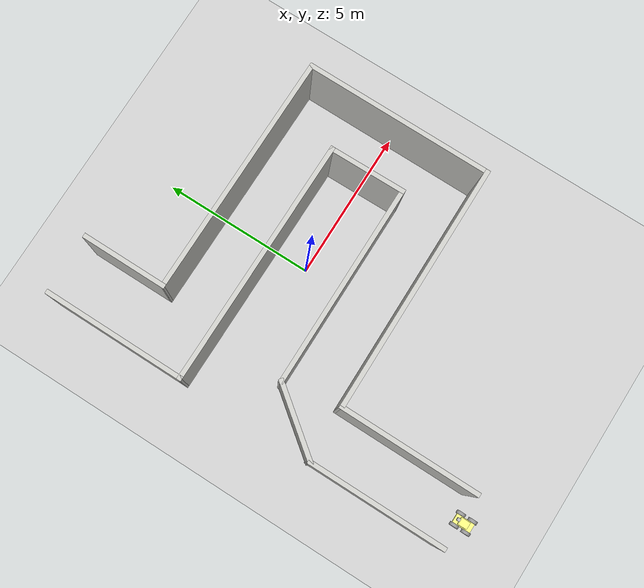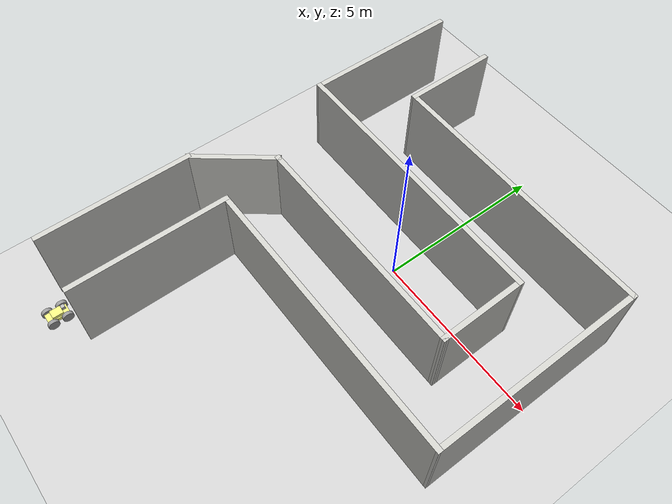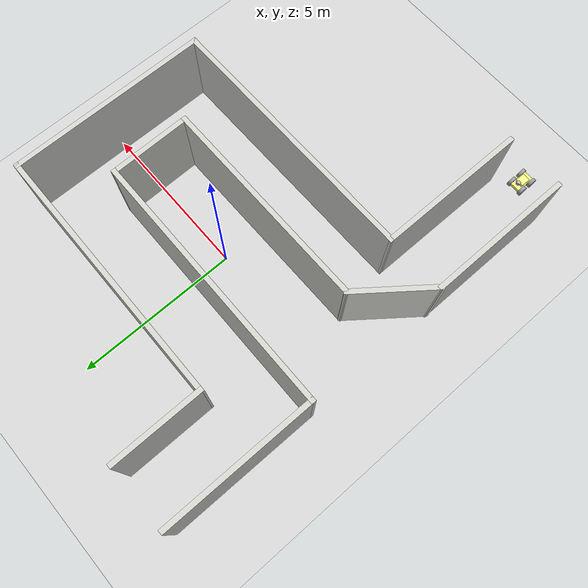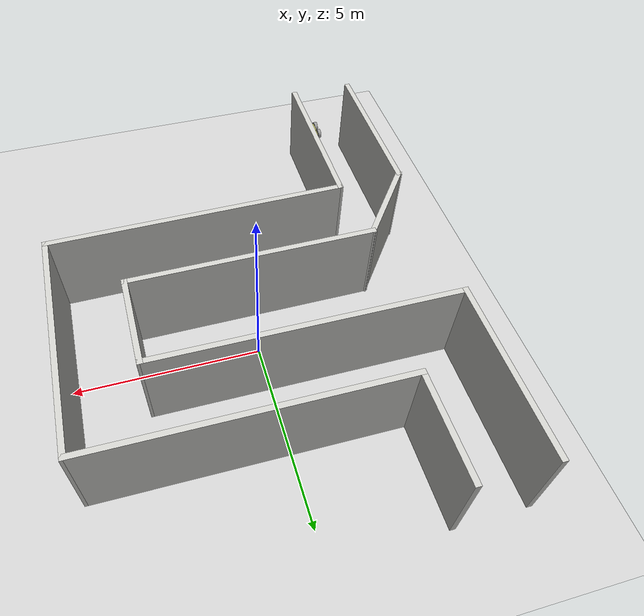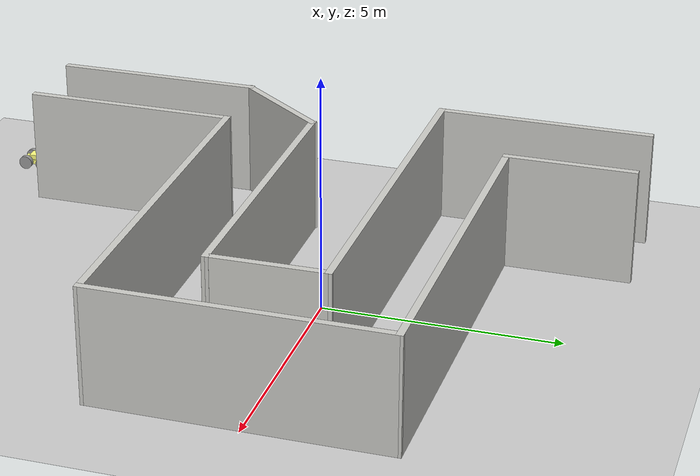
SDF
<sdf version="1.7">
 <world name="default">
  <light name="sun" type="directional">
   <pose>0 0 10 0 -0 0</pose>
   <diffuse>0.8 0.8 0.8 1</diffuse>
   <specular>0.2 0.2 0.2 1</specular>
   <attenuation>
    <range>1000</range>
    <constant>0.9</constant>
    <linear>0.01</linear>
    <quadratic>0.001</quadratic>
   </attenuation>
   <direction>-0.5 0.1 -0.9</direction>
   <spot><inner_angle>0</inner_angle><outer_angle>0</outer_angle><falloff>0</falloff></spot>
  </light>
  <model name="ground_plane">
   <static>1</static>
   <link name="link">
    <collision name="collision">
     <geometry><plane><normal>0 0 1</normal><size>100 100</size></plane></geometry>
     <surface>
      <contact><collide_bitmask>65535</collide_bitmask></contact>
      <friction><ode><mu>100</mu><mu2>50</mu2></ode></friction>
     </surface>
    </collision>
    <visual name="visual">
     <cast_shadows>0</cast_shadows>
     <geometry><plane><normal>0 0 1</normal><size>100 100</size></plane></geometry>
     <material>
      <script><uri>file://media/materials/scripts/gazebo.material</uri><name>Gazebo/Grey</name></script>
     </material>
    </visual>
   </link>
  </model>
  <gravity>0 0 -9.8</gravity>
  <magnetic_field>6e-06 2.3e-05 -4.2e-05</magnetic_field>
  <atmosphere type="adiabatic"/>
  <physics type="ode">
   <max_step_size>0.001</max_step_size>
   <real_time_factor>1</real_time_factor>
   <real_time_update_rate>1000</real_time_update_rate>
  </physics>
  <scene><ambient>0.4 0.4 0.4 1</ambient><background>0.7 0.7 0.7 1</background><shadows>1</shadows></scene>
  <spherical_coordinates>
   <surface_model>EARTH_WGS84</surface_model>
   <latitude_deg>0</latitude_deg>
   <longitude_deg>0</longitude_deg>
   <elevation>0</elevation>
   <heading_deg>0</heading_deg>
  </spherical_coordinates>
  <model name="race3">
   <pose>-0.04989 -0.93009 0 0 -0 0</pose>
   <link name="Wall_0">
    <collision name="Wall_0_Collision">
     <geometry><box><size>4.5 0.15 2.5</size></box></geometry>
     <pose>0 0 1.25 0 -0 0</pose>
    </collision>
    <visual name="Wall_0_Visual">
     <pose>0 0 1.25 0 -0 0</pose>
     <geometry><box><size>4.5 0.15 2.5</size></box></geometry>
     <material>
      <script><uri>file://media/materials/scripts/gazebo.material</uri><name>Gazebo/CeilingTiled</name></script>
      <ambient>1 1 1 1</ambient>
     </material>
     <meta><layer>0</layer></meta>
    </visual>
    <pose>-4.92011 -4.44491 0 0 -0 1.5708</pose>
   </link>
   <link name="Wall_1">
    <collision name="Wall_1_Collision">
     <geometry><box><size>2.5584 0.15 2.5</size></box></geometry>
     <pose>0 0 1.25 0 -0 0</pose>
    </collision>
    <visual name="Wall_1_Visual">
     <pose>0 0 1.25 0 -0 0</pose>
     <geometry><box><size>2.5584 0.15 2.5</size></box></geometry>
     <material>
      <script><uri>file://media/materials/scripts/gazebo.material</uri><name>Gazebo/CeilingTiled</name></script>
      <ambient>1 1 1 1</ambient>
     </material>
     <meta><layer>0</layer></meta>
    </visual>
    <pose>-4.18011 -1.31991 0 0 -0 0.909025</pose>
   </link>
   <link name="Wall_10">
    <collision name="Wall_10_Collision">
     <geometry><box><size>8.07002 0.15 2.5</size></box></geometry>
     <pose>0 0 1.25 0 -0 0</pose>
    </collision>
    <visual name="Wall_10_Visual">
     <pose>0 0 1.25 0 -0 0</pose>
     <geometry><box><size>8.07002 0.15 2.5</size></box></geometry>
     <material>
      <script><uri>file://media/materials/scripts/gazebo.material</uri><name>Gazebo/CeilingTiled</name></script>
      <ambient>1 1 1 1</ambient>
     </material>
     <meta><layer>0</layer></meta>
    </visual>
    <pose>0.989895 3.95009 0 0 -0 3.13402</pose>
   </link>
   <link name="Wall_11">
    <collision name="Wall_11_Collision">
     <geometry><box><size>2.82 0.15 2.5</size></box></geometry>
     <pose>0 0 1.25 0 -0 0</pose>
    </collision>
    <visual name="Wall_11_Visual">
     <pose>0 0 1.25 0 -0 0</pose>
     <geometry><box><size>2.82 0.15 2.5</size></box></geometry>
     <material>
      <script><uri>file://media/materials/scripts/gazebo.material</uri><name>Gazebo/CeilingTiled</name></script>
      <ambient>1 1 1 1</ambient>
     </material>
     <meta><layer>0</layer></meta>
    </visual>
    <pose>-2.97011 5.31509 0 0 -0 1.5708</pose>
   </link>
   <link name="Wall_2">
    <collision name="Wall_2_Collision">
     <geometry><box><size>6.72001 0.15 2.5</size></box></geometry>
     <pose>0 0 1.25 0 -0 0</pose>
    </collision>
    <visual name="Wall_2_Visual">
     <pose>0 0 1.25 0 -0 0</pose>
     <geometry><box><size>6.72001 0.15 2.5</size></box></geometry>
     <material>
      <script><uri>file://media/materials/scripts/gazebo.material</uri><name>Gazebo/CeilingTiled</name></script>
      <ambient>1 1 1 1</ambient>
     </material>
     <meta><layer>0</layer></meta>
    </visual>
    <pose>-0.155105 -0.364907 0 0 -0 0.001522</pose>
   </link>
   <link name="Wall_3">
    <collision name="Wall_3_Collision">
     <geometry><box><size>2.56019 0.15 2.5</size></box></geometry>
     <pose>0 0 1.25 0 -0 0</pose>
    </collision>
    <visual name="Wall_3_Visual">
     <pose>0 0 1.25 0 -0 0</pose>
     <geometry><box><size>2.56019 0.15 2.5</size></box></geometry>
     <material>
      <script><uri>file://media/materials/scripts/gazebo.material</uri><name>Gazebo/CeilingTiled</name></script>
      <ambient>1 1 1 1</ambient>
     </material>
     <meta><layer>0</layer></meta>
    </visual>
    <pose>3.1149 0.845093 0 0 -0 1.58324</pose>
   </link>
   <link name="Wall_4">
    <collision name="Wall_4_Collision">
     <geometry><box><size>8.1704 0.15 2.5</size></box></geometry>
     <pose>0 0 1.25 0 -0 0</pose>
    </collision>
    <visual name="Wall_4_Visual">
     <pose>0 0 1.25 0 -0 0</pose>
     <geometry><box><size>8.1704 0.15 2.5</size></box></geometry>
     <material>
      <script><uri>file://media/materials/scripts/gazebo.material</uri><name>Gazebo/CeilingTiled</name></script>
      <ambient>1 1 1 1</ambient>
     </material>
     <meta><layer>0</layer></meta>
    </visual>
    <pose>-0.910105 2.07509 0 0 -0 3.13536</pose>
   </link>
   <link name="Wall_5">
    <collision name="Wall_5_Collision">
     <geometry><box><size>4.68001 0.15 2.5</size></box></geometry>
     <pose>0 0 1.25 0 -0 0</pose>
    </collision>
    <visual name="Wall_5_Visual">
     <pose>0 0 1.25 0 -0 0</pose>
     <geometry><box><size>4.68001 0.15 2.5</size></box></geometry>
     <material>
      <script><uri>file://media/materials/scripts/gazebo.material</uri><name>Gazebo/CeilingTiled</name></script>
      <ambient>1 1 1 1</ambient>
     </material>
     <meta><layer>0</layer></meta>
    </visual>
    <pose>-4.9151 4.36509 0 0 -0 1.56859</pose>
   </link>
   <link name="Wall_7">
    <collision name="Wall_7_Collision">
     <geometry><box><size>4.60004 0.15 2.5</size></box></geometry>
     <pose>0 0 1.25 0 -0 0</pose>
    </collision>
    <visual name="Wall_7_Visual">
     <pose>0 0 1.25 0 -0 0</pose>
     <geometry><box><size>4.60004 0.15 2.5</size></box></geometry>
     <material>
      <script><uri>file://media/materials/scripts/gazebo.material</uri><name>Gazebo/CeilingTiled</name></script>
      <ambient>1 1 1 1</ambient>
     </material>
     <meta><layer>0</layer></meta>
    </visual>
    <pose>-3.14511 -4.42491 0 0 -0 1.56855</pose>
   </link>
   <link name="Wall_8">
    <collision name="Wall_8_Collision">
     <geometry><box><size>8.24015 0.15 2.5</size></box></geometry>
     <pose>0 0 1.25 0 -0 0</pose>
    </collision>
    <visual name="Wall_8_Visual">
     <pose>0 0 1.25 0 -0 0</pose>
     <geometry><box><size>8.24015 0.15 2.5</size></box></geometry>
     <material>
      <script><uri>file://media/materials/scripts/gazebo.material</uri><name>Gazebo/CeilingTiled</name></script>
      <ambient>1 1 1 1</ambient>
     </material>
     <meta><layer>0</layer></meta>
    </visual>
    <pose>0.904895 -2.17491 0 0 -0 0.00618</pose>
   </link>
   <link name="Wall_9">
    <collision name="Wall_9_Collision">
     <geometry><box><size>6.22013 0.15 2.5</size></box></geometry>
     <pose>0 0 1.25 0 -0 0</pose>
    </collision>
    <visual name="Wall_9_Visual">
     <pose>0 0 1.25 0 -0 0</pose>
     <geometry><box><size>6.22013 0.15 2.5</size></box></geometry>
     <material>
      <script><uri>file://media/materials/scripts/gazebo.material</uri><name>Gazebo/CeilingTiled</name></script>
      <ambient>1 1 1 1</ambient>
     </material>
     <meta><layer>0</layer></meta>
    </visual>
    <pose>4.94989 0.885093 0 0 -0 1.5708</pose>
   </link>
   <static>1</static>
  </model>
  <model name="project_model_v1">
   <link name="chassis">
    <inertial>
     <mass>7</mass>
     <inertia>
      <ixx>0.0394333</ixx>
      <ixy>0</ixy>
      <ixz>0</ixz>
      <iyy>0.21491</iyy>
      <iyz>0</iyz>
      <izz>0.242677</izz>
     </inertia>
    </inertial>
    <pose>0 0 0.5 0 -0 0</pose>
    <visual name="visual">
     <geometry><box><size>0.59868 0.3 0.1</size></box></geometry>
     <material>
      <lighting>1</lighting>
      <script><uri>file://media/materials/scripts/gazebo.material</uri><name>Gazebo/Grey</name></script>
      <shader type="pixel"><normal_map>__default__</normal_map></shader>
      <emissive>0 0 0 1</emissive>
      <ambient>1 1 0.5 1</ambient>
      <diffuse>1 1 0.5 1</diffuse>
      <specular>0.01 0.01 0.01 1</specular>
     </material>
    </visual>
    <visual name="ModelPreview_1::chassis::visual_1">
     <geometry><box><size>0.59868 0.3 0.1</size></box></geometry>
     <material>
      <lighting>1</lighting>
      <script><uri>file://media/materials/scripts/gazebo.material</uri><name>Gazebo/Grey</name></script>
      <shader type="pixel"><normal_map>__default__</normal_map></shader>
      <emissive>0 0 0 1</emissive>
      <ambient>1 1 0.5 1</ambient>
      <diffuse>1 1 0.5 1</diffuse>
      <specular>0.01 0.01 0.01 1</specular>
     </material>
    </visual>
    <collision name="collision">
     <geometry><box><size>0.59868 0.24 0.1</size></box></geometry>
     <surface>
      <friction>
       <ode><mu>1</mu><mu2>1</mu2><fdir1>0 0 0</fdir1><slip1>0</slip1><slip2>0</slip2></ode>
       <torsional>
        <coefficient>1</coefficient>
        <patch_radius>0</patch_radius>
        <surface_radius>0</surface_radius>
        <use_patch_radius>1</use_patch_radius>
        <ode><slip>0</slip></ode>
       </torsional>
      </friction>
      <bounce><restitution_coefficient>0</restitution_coefficient><threshold>1e+06</threshold></bounce>
      <contact>
       <collide_without_contact>0</collide_without_contact>
       <collide_without_contact_bitmask>1</collide_without_contact_bitmask>
       <collide_bitmask>1</collide_bitmask>
       <ode>
        <soft_cfm>0</soft_cfm>
        <soft_erp>0.2</soft_erp>
        <kp>1e+13</kp>
        <kd>1</kd>
        <max_vel>0.01</max_vel>
        <min_depth>0</min_depth>
       </ode>
       <bullet>
        <split_impulse>1</split_impulse>
        <split_impulse_penetration_threshold>-0.01</split_impulse_penetration_threshold>
        <soft_cfm>0</soft_cfm>
        <soft_erp>0.2</soft_erp>
        <kp>1e+13</kp>
        <kd>1</kd>
       </bullet>
      </contact>
     </surface>
    </collision>
   </link>
   <link name="left_back_wheel">
    <inertial>
     <mass>1</mass>
     <inertia>
      <ixx>0.00645833</ixx>
      <ixy>0</ixy>
      <ixz>0</ixz>
      <iyy>0.00645833</iyy>
      <iyz>0</iyz>
      <izz>0.01125</izz>
     </inertia>
    </inertial>
    <pose>-0.2 0.2 0.5 1.5707 2.8e-05 0.004847</pose>
    <visual name="visual">
     <geometry><cylinder><radius>0.15</radius><length>0.1</length></cylinder></geometry>
     <material>
      <lighting>1</lighting>
      <script><uri>file://media/materials/scripts/gazebo.material</uri><name>Gazebo/Grey</name></script>
      <shader type="pixel"><normal_map>__default__</normal_map></shader>
      <ambient>0 0 0 1</ambient>
      <diffuse>0 0 0 1</diffuse>
      <specular>0.01 0.01 0.01 1</specular>
      <emissive>0 0 0 1</emissive>
     </material>
    </visual>
    <collision name="collision">
     <geometry><cylinder><radius>0.15</radius><length>0.1</length></cylinder></geometry>
     <surface>
      <friction>
       <ode><mu>1</mu><mu2>1</mu2><fdir1>0 0 0</fdir1><slip1>0</slip1><slip2>0</slip2></ode>
       <torsional>
        <coefficient>1</coefficient>
        <patch_radius>0</patch_radius>
        <surface_radius>0</surface_radius>
        <use_patch_radius>1</use_patch_radius>
        <ode><slip>0</slip></ode>
       </torsional>
      </friction>
      <bounce><restitution_coefficient>0</restitution_coefficient><threshold>1e+06</threshold></bounce>
      <contact>
       <collide_without_contact>0</collide_without_contact>
       <collide_without_contact_bitmask>1</collide_without_contact_bitmask>
       <collide_bitmask>1</collide_bitmask>
       <ode>
        <soft_cfm>0</soft_cfm>
        <soft_erp>0.2</soft_erp>
        <kp>1e+13</kp>
        <kd>1</kd>
        <max_vel>0.01</max_vel>
        <min_depth>0</min_depth>
       </ode>
       <bullet>
        <split_impulse>1</split_impulse>
        <split_impulse_penetration_threshold>-0.01</split_impulse_penetration_threshold>
        <soft_cfm>0</soft_cfm>
        <soft_erp>0.2</soft_erp>
        <kp>1e+13</kp>
        <kd>1</kd>
       </bullet>
      </contact>
     </surface>
    </collision>
   </link>
   <link name="left_wheel">
    <inertial>
     <mass>1</mass>
     <inertia>
      <ixx>0.00645833</ixx>
      <ixy>0</ixy>
      <ixz>0</ixz>
      <iyy>0.00645833</iyy>
      <iyz>0</iyz>
      <izz>0.01125</izz>
     </inertia>
    </inertial>
    <pose>0.2 0.2 0.5 1.5707 -0 0</pose>
    <visual name="visual">
     <geometry><cylinder><radius>0.15</radius><length>0.1</length></cylinder></geometry>
     <material>
      <lighting>1</lighting>
      <script><uri>file://media/materials/scripts/gazebo.material</uri><name>Gazebo/Grey</name></script>
      <shader type="pixel"><normal_map>__default__</normal_map></shader>
      <ambient>0 0 0 1</ambient>
      <diffuse>0 0 0 1</diffuse>
      <specular>0.01 0.01 0.01 1</specular>
      <emissive>0 0 0 1</emissive>
     </material>
    </visual>
    <collision name="collision">
     <geometry><cylinder><radius>0.15</radius><length>0.1</length></cylinder></geometry>
     <surface>
      <friction>
       <ode><mu>1</mu><mu2>1</mu2><fdir1>0 0 0</fdir1><slip1>0</slip1><slip2>0</slip2></ode>
       <torsional>
        <coefficient>1</coefficient>
        <patch_radius>0</patch_radius>
        <surface_radius>0</surface_radius>
        <use_patch_radius>1</use_patch_radius>
        <ode><slip>0</slip></ode>
       </torsional>
      </friction>
      <bounce><restitution_coefficient>0</restitution_coefficient><threshold>1e+06</threshold></bounce>
      <contact>
       <collide_without_contact>0</collide_without_contact>
       <collide_without_contact_bitmask>1</collide_without_contact_bitmask>
       <collide_bitmask>1</collide_bitmask>
       <ode>
        <soft_cfm>0</soft_cfm>
        <soft_erp>0.2</soft_erp>
        <kp>1e+13</kp>
        <kd>1</kd>
        <max_vel>0.01</max_vel>
        <min_depth>0</min_depth>
       </ode>
       <bullet>
        <split_impulse>1</split_impulse>
        <split_impulse_penetration_threshold>-0.01</split_impulse_penetration_threshold>
        <soft_cfm>0</soft_cfm>
        <soft_erp>0.2</soft_erp>
        <kp>1e+13</kp>
        <kd>1</kd>
       </bullet>
      </contact>
     </surface>
    </collision>
   </link>
   <link name="link_0">
    <inertial>
     <mass>3</mass>
     <inertia><ixx>0.0169</ixx><ixy>0</ixy><ixz>0</ixz><iyy>0.025</iyy><iyz>0</iyz><izz>0.0369</izz></inertia>
    </inertial>
    <pose>0 0 0.6 0 -0 0</pose>
    <visual name="visual">
     <geometry><box><size>0.3 0.24 0.1</size></box></geometry>
     <material>
      <lighting>1</lighting>
      <script><uri>file://media/materials/scripts/gazebo.material</uri><name>Gazebo/Grey</name></script>
      <shader type="pixel"><normal_map>__default__</normal_map></shader>
      <ambient>1 1 0.5 1</ambient>
      <diffuse>1 1 0.5 1</diffuse>
      <specular>0.01 0.01 0.01 1</specular>
      <emissive>0 0 0 1</emissive>
     </material>
    </visual>
    <collision name="collision">
     <geometry><box><size>0.3 0.24 0.1</size></box></geometry>
     <surface>
      <friction>
       <ode><mu>1</mu><mu2>1</mu2><fdir1>0 0 0</fdir1><slip1>0</slip1><slip2>0</slip2></ode>
       <torsional>
        <coefficient>1</coefficient>
        <patch_radius>0</patch_radius>
        <surface_radius>0</surface_radius>
        <use_patch_radius>1</use_patch_radius>
        <ode><slip>0</slip></ode>
       </torsional>
      </friction>
      <bounce><restitution_coefficient>0</restitution_coefficient><threshold>1e+06</threshold></bounce>
      <contact>
       <collide_without_contact>0</collide_without_contact>
       <collide_without_contact_bitmask>1</collide_without_contact_bitmask>
       <collide_bitmask>1</collide_bitmask>
       <ode>
        <soft_cfm>0</soft_cfm>
        <soft_erp>0.2</soft_erp>
        <kp>1e+13</kp>
        <kd>1</kd>
        <max_vel>0.01</max_vel>
        <min_depth>0</min_depth>
       </ode>
       <bullet>
        <split_impulse>1</split_impulse>
        <split_impulse_penetration_threshold>-0.01</split_impulse_penetration_threshold>
        <soft_cfm>0</soft_cfm>
        <soft_erp>0.2</soft_erp>
        <kp>1e+13</kp>
        <kd>1</kd>
       </bullet>
      </contact>
     </surface>
    </collision>
   </link>
   <link name="right_back_wheel">
    <inertial>
     <mass>1</mass>
     <inertia>
      <ixx>0.00645833</ixx>
      <ixy>0</ixy>
      <ixz>0</ixz>
      <iyy>0.00645833</iyy>
      <iyz>0</iyz>
      <izz>0.01125</izz>
     </inertia>
    </inertial>
    <pose>-0.2 -0.2 0.5 1.57071 2.8e-05 0.004847</pose>
    <visual name="visual">
     <geometry><cylinder><radius>0.15</radius><length>0.1</length></cylinder></geometry>
     <material>
      <lighting>1</lighting>
      <script><uri>file://media/materials/scripts/gazebo.material</uri><name>Gazebo/Grey</name></script>
      <shader type="pixel"><normal_map>__default__</normal_map></shader>
      <ambient>0 0 0 1</ambient>
      <diffuse>0 0 0 1</diffuse>
      <specular>0.01 0.01 0.01 1</specular>
      <emissive>0 0 0 1</emissive>
     </material>
    </visual>
    <collision name="collision">
     <geometry><cylinder><radius>0.15</radius><length>0.1</length></cylinder></geometry>
     <surface>
      <friction>
       <ode><mu>1</mu><mu2>1</mu2><fdir1>0 0 0</fdir1><slip1>0</slip1><slip2>0</slip2></ode>
       <torsional>
        <coefficient>1</coefficient>
        <patch_radius>0</patch_radius>
        <surface_radius>0</surface_radius>
        <use_patch_radius>1</use_patch_radius>
        <ode><slip>0</slip></ode>
       </torsional>
      </friction>
      <bounce><restitution_coefficient>0</restitution_coefficient><threshold>1e+06</threshold></bounce>
      <contact>
       <collide_without_contact>0</collide_without_contact>
       <collide_without_contact_bitmask>1</collide_without_contact_bitmask>
       <collide_bitmask>1</collide_bitmask>
       <ode>
        <soft_cfm>0</soft_cfm>
        <soft_erp>0.2</soft_erp>
        <kp>1e+13</kp>
        <kd>1</kd>
        <max_vel>0.01</max_vel>
        <min_depth>0</min_depth>
       </ode>
       <bullet>
        <split_impulse>1</split_impulse>
        <split_impulse_penetration_threshold>-0.01</split_impulse_penetration_threshold>
        <soft_cfm>0</soft_cfm>
        <soft_erp>0.2</soft_erp>
        <kp>1e+13</kp>
        <kd>1</kd>
       </bullet>
      </contact>
     </surface>
    </collision>
   </link>
   <link name="right_wheel">
    <inertial>
     <mass>1</mass>
     <inertia>
      <ixx>0.00645833</ixx>
      <ixy>0</ixy>
      <ixz>0</ixz>
      <iyy>0.00645833</iyy>
      <iyz>0</iyz>
      <izz>0.01125</izz>
     </inertia>
    </inertial>
    <pose>0.2 -0.2 0.5 1.5707 -0 0</pose>
    <visual name="visual">
     <geometry><cylinder><radius>0.15</radius><length>0.1</length></cylinder></geometry>
     <material>
      <lighting>1</lighting>
      <script><uri>file://media/materials/scripts/gazebo.material</uri><name>Gazebo/Grey</name></script>
      <shader type="pixel"><normal_map>__default__</normal_map></shader>
      <ambient>0 0 0 1</ambient>
      <diffuse>0 0 0 1</diffuse>
      <specular>0.01 0.01 0.01 1</specular>
      <emissive>0 0 0 1</emissive>
     </material>
    </visual>
    <collision name="collision">
     <geometry><cylinder><radius>0.15</radius><length>0.1</length></cylinder></geometry>
     <surface>
      <friction>
       <ode><mu>1</mu><mu2>1</mu2><fdir1>0 0 0</fdir1><slip1>0</slip1><slip2>0</slip2></ode>
       <torsional>
        <coefficient>1</coefficient>
        <patch_radius>0</patch_radius>
        <surface_radius>0</surface_radius>
        <use_patch_radius>1</use_patch_radius>
        <ode><slip>0</slip></ode>
       </torsional>
      </friction>
      <bounce><restitution_coefficient>0</restitution_coefficient><threshold>1e+06</threshold></bounce>
      <contact>
       <collide_without_contact>0</collide_without_contact>
       <collide_without_contact_bitmask>1</collide_without_contact_bitmask>
       <collide_bitmask>1</collide_bitmask>
       <ode>
        <soft_cfm>0</soft_cfm>
        <soft_erp>0.2</soft_erp>
        <kp>1e+13</kp>
        <kd>1</kd>
        <max_vel>0.01</max_vel>
        <min_depth>0</min_depth>
       </ode>
       <bullet>
        <split_impulse>1</split_impulse>
        <split_impulse_penetration_threshold>-0.01</split_impulse_penetration_threshold>
        <soft_cfm>0</soft_cfm>
        <soft_erp>0.2</soft_erp>
        <kp>1e+13</kp>
        <kd>1</kd>
       </bullet>
      </contact>
     </surface>
    </collision>
   </link>
   <model name="camera_model">
    <pose>0.205013 -0.003476 0.698937 0 -0 0</pose>
    <link name="camera_link">
     <inertial>
      <mass>0.1</mass>
      <inertia>
       <ixx>0.000166667</ixx>
       <iyy>0.000166667</iyy>
       <izz>0.000166667</izz>
       <ixy>0</ixy>
       <ixz>0</ixz>
       <iyz>0</iyz>
      </inertia>
     </inertial>
     <collision name="collision"><geometry><box><size>0.1 0.1 0.1</size></box></geometry></collision>
     <visual name="visual"><geometry><box><size>0.1 0.1 0.1</size></box></geometry></visual>
     <sensor name="lidar" type="ray">
      <always_on>1</always_on>
      <visualize>1</visualize>
      <update_rate>5</update_rate>
      <ray>
       <scan>
        <horizontal>
         <samples>360</samples>
         <resolution>1</resolution>
         <min_angle>0</min_angle>
         <max_angle>6.28</max_angle>
        </horizontal>
        <vertical><samples>1</samples><min_angle>0</min_angle><max_angle>0</max_angle></vertical>
       </scan>
       <range><min>0.12</min><max>3.5</max><resolution>0.015</resolution></range>
       <noise><type>gaussian</type><mean>0</mean><stddev>0.01</stddev></noise>
      </ray>
      <plugin name="scan" filename="libgazebo_ros_ray_sensor.so">
       <ros><remapping>~/out:=scan</remapping></ros>
       <output_type>sensor_msgs/LaserScan</output_type>
       <frame_name>lidar_link</frame_name>
      </plugin>
     </sensor>
    </link>
   </model>
   <joint name="chassis_JOINT_0" type="fixed">
    <parent>chassis</parent>
    <child>camera_model::camera_link</child>
    <physics>
     <ode><limit><cfm>0</cfm><erp>0.2</erp></limit><suspension><cfm>0</cfm><erp>0.2</erp></suspension></ode>
    </physics>
   </joint>
   <joint name="left_back_wheel_joint" type="revolute">
    <parent>chassis</parent>
    <child>left_back_wheel</child>
    <axis>
     <xyz>0 0 1</xyz>
     <limit>
      <lower>-1.79769e+308</lower>
      <upper>1.79769e+308</upper>
      <effort>-1</effort>
      <velocity>-1</velocity>
     </limit>
     <dynamics>
      <spring_reference>0</spring_reference>
      <spring_stiffness>0</spring_stiffness>
      <damping>0</damping>
      <friction>0</friction>
     </dynamics>
    </axis>
    <physics>
     <ode><limit><cfm>0</cfm><erp>0.2</erp></limit><suspension><cfm>0</cfm><erp>0.2</erp></suspension></ode>
    </physics>
   </joint>
   <joint name="left_wheel_joint" type="revolute">
    <parent>chassis</parent>
    <child>left_wheel</child>
    <axis>
     <xyz>0 0 1</xyz>
     <limit>
      <lower>-1.79769e+308</lower>
      <upper>1.79769e+308</upper>
      <effort>-1</effort>
      <velocity>-1</velocity>
     </limit>
     <dynamics>
      <spring_reference>0</spring_reference>
      <spring_stiffness>0</spring_stiffness>
      <damping>0</damping>
      <friction>0</friction>
     </dynamics>
    </axis>
    <physics>
     <ode><limit><cfm>0</cfm><erp>0.2</erp></limit><suspension><cfm>0</cfm><erp>0.2</erp></suspension></ode>
    </physics>
   </joint>
   <joint name="link_0_JOINT_0" type="fixed">
    <parent>chassis</parent>
    <child>link_0</child>
    <physics>
     <ode><limit><cfm>0</cfm><erp>0.2</erp></limit><suspension><cfm>0</cfm><erp>0.2</erp></suspension></ode>
    </physics>
   </joint>
   <joint name="right_back_wheel_joint" type="revolute">
    <parent>chassis</parent>
    <child>right_back_wheel</child>
    <axis>
     <xyz>0 0 1</xyz>
     <limit>
      <lower>-1.79769e+308</lower>
      <upper>1.79769e+308</upper>
      <effort>-1</effort>
      <velocity>-1</velocity>
     </limit>
     <dynamics>
      <spring_reference>0</spring_reference>
      <spring_stiffness>0</spring_stiffness>
      <damping>0</damping>
      <friction>0</friction>
     </dynamics>
    </axis>
    <physics>
     <ode><limit><cfm>0</cfm><erp>0.2</erp></limit><suspension><cfm>0</cfm><erp>0.2</erp></suspension></ode>
    </physics>
   </joint>
   <joint name="right_wheel_joint" type="revolute">
    <parent>chassis</parent>
    <child>right_wheel</child>
    <axis>
     <xyz>0 0 1</xyz>
     <limit>
      <lower>-1.79769e+308</lower>
      <upper>1.79769e+308</upper>
      <effort>-1</effort>
      <velocity>-1</velocity>
     </limit>
     <dynamics>
      <spring_reference>0</spring_reference>
      <spring_stiffness>0</spring_stiffness>
      <damping>0</damping>
      <friction>0</friction>
     </dynamics>
    </axis>
    <physics>
     <ode><limit><cfm>0</cfm><erp>0.2</erp></limit><suspension><cfm>0</cfm><erp>0.2</erp></suspension></ode>
    </physics>
   </joint>
   <static>0</static>
   <plugin name="diff_drive" filename="libgazebo_ros_diff_drive.so">
    <ros>
     <namespace>/</namespace>
     <remapping>cmd_vel:=cmd_vel</remapping>
     <remapping>odom:=odom_demo</remapping>
    </ros>
    <num_wheel_pairs>2</num_wheel_pairs>
    <left_joint>left_wheel_joint</left_joint>
    <left_joint>left_back_wheel_joint</left_joint>
    <right_joint>right_wheel_joint</right_joint>
    <right_joint>right_back_wheel_joint</right_joint>
    <wheel_separation>1.25</wheel_separation>
    <wheel_diameter>0.3</wheel_diameter>
    <max_wheel_torque>20</max_wheel_torque>
    <max_wheel_acceleration>1.0</max_wheel_acceleration>
    <publish_odom>1</publish_odom>
    <publish_odom_tf>1</publish_odom_tf>
    <publish_wheel_tf>1</publish_wheel_tf>
    <odometry_frame>odom_demo</odometry_frame>
    <robot_base_frame>chassis</robot_base_frame>
   </plugin>
   <pose>-3.99464 -8.03122 0 0 -0 1.56213</pose>
  </model>
 </world>
</sdf>
